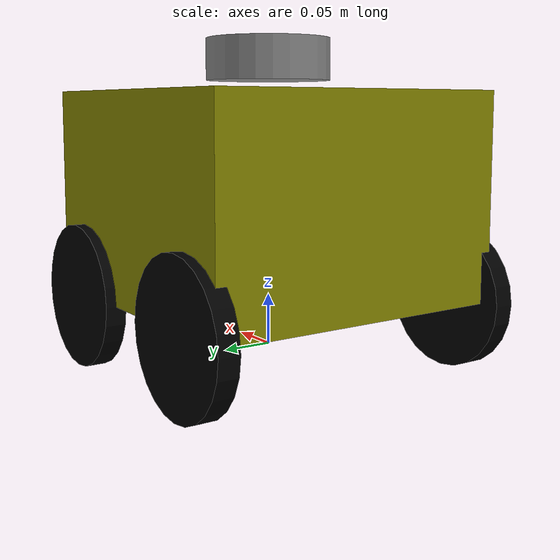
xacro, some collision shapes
<?xml version="1.0"?>
<robot name="my_robot" xmlns:xacro="http://www.ros.org/wiki/xacro">

    <xacro:include filename="$(find my_robot_description)/urdf/robot.gazebo.xacro"/>
    <xacro:arg name="mesh_path" default="package://my_robot_description/meshes/"/>

    <xacro:property name="base_length" value="0.3"/>
    <xacro:property name="base_width"  value="0.3"/>
    <xacro:property name="base_height" value="0.2"/>
    <xacro:property name="base_mass"   value="5.0"/>

    <xacro:property name="wheel_radius" value="0.07"/>
    <xacro:property name="wheel_length" value="0.02"/>
    <xacro:property name="wheel_mass"   value="1.0"/>

    <xacro:property name="wheel_x_offset" value="0.1"/>
    <xacro:property name="wheel_y_offset" value="0.15"/>
    <xacro:property name="wheel_z_offset" value="-0.1"/>

    <xacro:property name="lidar_radius" value="0.06"/>
    <xacro:property name="lidar_length" value="0.04"/>
    <xacro:property name="lidar_mass"   value="0.1"/>
    <xacro:property name="lidar_z_offset" value="0.13"/>

    <xacro:property name="base_footprint_z" value="0.15"/>

    <link name="base_footprint"/>

    <joint name="base_footprint_joint" type="fixed">
        <parent link="base_footprint"/>
        <child link="base_link"/>
        <origin xyz="0 0 ${base_footprint_z}" rpy="0 0 0"/>
    </joint>

    <link name="base_link">
        <inertial>
            <origin xyz="0 0 0" rpy="0 0 0"/>
            <mass value="${base_mass}"/>
            <inertia
                ixx="${(1/12) * base_mass * (base_width*base_width + base_height*base_height)}"
                ixy="0.0" ixz="0.0"
                iyy="${(1/12) * base_mass * (base_length*base_length + base_height*base_height)}"
                iyz="0.0"
                izz="${(1/12) * base_mass * (base_length*base_length + base_width*base_width)}"/>
        </inertial>
        <visual>
            <geometry><box size="${base_length} ${base_width} ${base_height}"/></geometry>
            <material name="chassis_color"><color rgba="0.5 0.5 0.0 1.0"/></material>
        </visual>
        <collision>
            <geometry><box size="${base_length} ${base_width} ${base_height}"/></geometry>
        </collision>
    </link>

    <link name="lidar_link">
        <visual>
            <geometry><mesh filename="$(arg mesh_path)lidar.STL"/></geometry>
            <material name="lidar_gray"><color rgba="0.5 0.5 0.5 1.0"/></material>
        </visual>
        <collision>
            <geometry><cylinder radius="${lidar_radius}" length="${lidar_length}"/></geometry>
        </collision>
        <inertial>
            <mass value="${lidar_mass}"/>
            <inertia ixx="0.0001" ixy="0.0" ixz="0.0" iyy="0.0001" iyz="0.0" izz="0.0001"/>
        </inertial>
    </link>

    <joint name="lidar_joint" type="fixed">
        <parent link="base_link"/>
        <child link="lidar_link"/>
        <origin xyz="0 0 ${lidar_z_offset}" rpy="0 0 0"/>
    </joint>

    <xacro:macro name="wheel" params="prefix x_reflect y_reflect">
        <link name="${prefix}_wheel_link">
            <inertial>
                <mass value="${wheel_mass}"/>
                <inertia
                    ixx="${(1/12) * wheel_mass * (3*wheel_radius*wheel_radius + wheel_length*wheel_length)}"
                    ixy="0.0" ixz="0.0"
                    iyy="${(1/12) * wheel_mass * (3*wheel_radius*wheel_radius + wheel_length*wheel_length)}"
                    iyz="0.0"
                    izz="${(1/2) * wheel_mass * (wheel_radius*wheel_radius)}"/>
            </inertial>
            <visual>
                <origin xyz="0 0 0" rpy="1.5708 0 0"/>
                <geometry><cylinder radius="${wheel_radius}" length="${wheel_length}"/></geometry>
                <material name="wheel_color"><color rgba="0.0 0.0 0.0 1.0"/></material>
            </visual>
            <collision>
                <origin xyz="0 0 0" rpy="1.5708 0 0"/>
                <geometry><cylinder radius="${wheel_radius}" length="${wheel_length}"/></geometry>
            </collision>
        </link>
        <joint name="${prefix}_wheel_joint" type="continuous">
            <parent link="base_link"/>
            <child link="${prefix}_wheel_link"/>
            <origin xyz="${x_reflect * wheel_x_offset} ${y_reflect * wheel_y_offset} ${wheel_z_offset}" rpy="0 0 0"/>
            <axis xyz="0 1 0"/>
        </joint>
    </xacro:macro>

    <xacro:wheel prefix="left_front"  x_reflect="1"  y_reflect="1"/>
    <xacro:wheel prefix="right_front" x_reflect="1"  y_reflect="-1"/>
    <xacro:wheel prefix="left_back"   x_reflect="-1" y_reflect="1"/>
    <xacro:wheel prefix="right_back"  x_reflect="-1" y_reflect="-1"/>

</robot>
